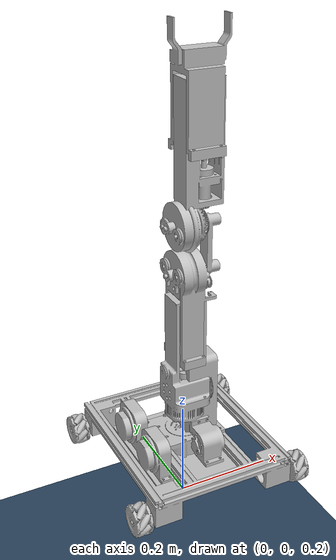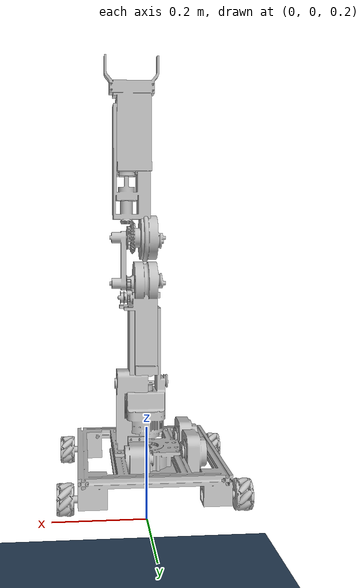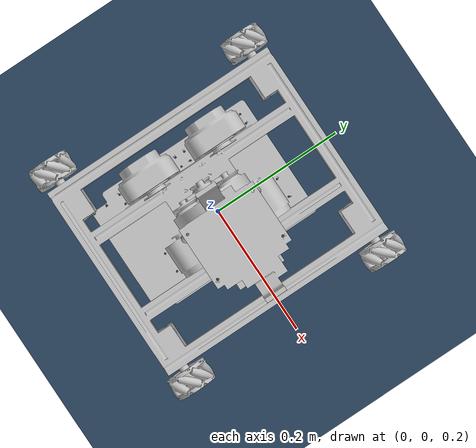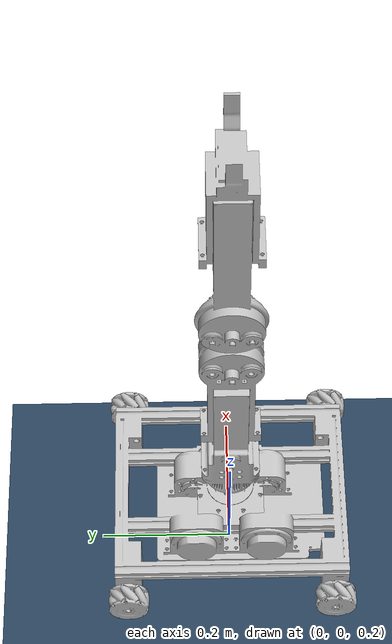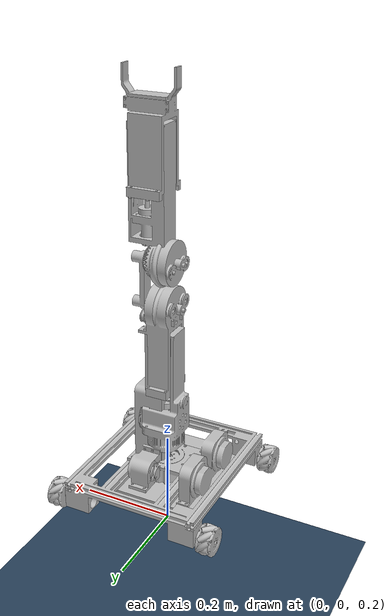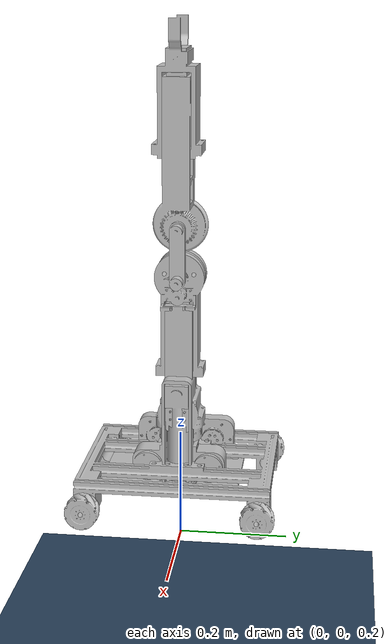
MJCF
<?xml version="1.0" ?>
<mujoco model="manipulator">

    <compiler angle="radian"
              meshdir="../../manipulator_motor_description/meshes"
              autolimits="true"/>

    <option gravity="0 0 -9.81" timestep="0.001"/>

    <default>
        <!-- armature: 감속기 반사 관성. frictionloss: 쿨롱 마찰. damping: 점성 감쇠 -->
        <joint frictionloss="0.1" armature="0.05" damping="1.0"/>
        <default class="revolute">
            <joint damping="2.0" armature="0.05"/>
        </default>
        <default class="prismatic">
            <joint damping="10.0" armature="0.01"/>
        </default>
        <default class="visual">
            <geom type="mesh" contype="0" conaffinity="0" group="2" rgba="0.75 0.75 0.75 1"/>
        </default>
        <default class="collision">
            <geom group="3" contype="1" conaffinity="1"/>
        </default>
    </default>

    <asset>
        <mesh name="base_link"     file="base_link.stl"     scale="0.001 0.001 0.001"/>
        <mesh name="yaw_link_1"    file="yaw_link_1.stl"    scale="0.001 0.001 0.001"/>
        <mesh name="lower_link1_1" file="lower_link1_1.stl" scale="0.001 0.001 0.001"/>
        <mesh name="lower_link2_1" file="lower_link2_1.stl" scale="0.001 0.001 0.001"/>
        <mesh name="guide2_1"      file="guide2_1.stl"      scale="0.001 0.001 0.001"/>
        <mesh name="upper_link1_1" file="upper_link1_1.stl" scale="0.001 0.001 0.001"/>
        <mesh name="upper_link2_1" file="upper_link2_1.stl" scale="0.001 0.001 0.001"/>
        <mesh name="wheel_fl_1"    file="wheel_fl_1.stl"    scale="0.001 0.001 0.001"/>
        <mesh name="wheel_bl_1"    file="wheel_bl_1.stl"    scale="0.001 0.001 0.001"/>
        <mesh name="wheel_fr_1"    file="wheel_fr_1.stl"    scale="0.001 0.001 0.001"/>
        <mesh name="wheel_br_1"    file="wheel_br_1.stl"    scale="0.001 0.001 0.001"/>

        <texture type="skybox" builtin="gradient"
                 rgb1="0.3 0.5 0.7" rgb2="0 0 0" width="512" height="3072"/>
        <texture type="2d" name="groundplane" builtin="checker" mark="edge"
                 rgb1="0.2 0.3 0.4" rgb2="0.1 0.2 0.3"
                 markrgb="0.8 0.8 0.8" width="300" height="300"/>
        <material name="groundplane" texture="groundplane"
                  texuniform="true" texrepeat="5 5" reflectance="0.2"/>
    </asset>

    <worldbody>
        <light pos="0 0 3" dir="0 0 -1" directional="true"/>
        <geom name="floor" size="0 0 0.05" type="plane"
              material="groundplane" friction="1.0 0.005 0.0001"/>

        <!-- ═══════════════════════════════════════════════════
             base_link: 세계에 고정 (freejoint 없음)
             ═══════════════════════════════════════════════════ -->
        <body name="base_link" pos="0 0 0.3" quat="1 0 0 0">
            <geom type="mesh" mesh="base_link" class="visual"/>
            <inertial pos="7.545697705159546e-06 -6.288383922219511e-06 0.03594594111046938"
                      mass="0.8918760892092862"
                      fullinertia="0.013044 0.008436 0.020962 0.0 0.0 -1e-06"/>

            <!-- ── joint0: yaw1 (revolute, axis 0 0 1) ── -->
            <!-- URDF joint origin: 0 0 0.0566 rel to base_link -->
            <body name="yaw_link_1" pos="0 0 0.0566">
                <joint name="yaw1" type="hinge" pos="0 0 0"
                       axis="0 0 1" range="-2.094395 2.094395" class="revolute"/>
                <geom type="mesh" mesh="yaw_link_1" class="visual" pos="0 0 -0.0566"/>
                <inertial pos="0.02505185068167164 0.00017308161549442616 0.04350757657338304"
                          mass="0.9994851144783486"
                          fullinertia="0.005871 0.004947 0.008392 -9e-06 -0.000648 -5e-06"/>

                <!-- ── joint1: pitch1 (revolute, axis 1 0 0, range 0~π/2) ── -->
                <!-- URDF joint origin: 0.054 0.0005 0.0965 rel to yaw_link_1 -->
                <body name="lower_link1_1" pos="0.054 0.0005 0.0965">
                    <joint name="pitch1" type="hinge" pos="0 0 0"
                           axis="1 0 0" range="0.0 1.570796" class="revolute" damping="5.0"/>
                    <geom type="mesh" mesh="lower_link1_1" class="visual" pos="-0.054 -0.0005 -0.1531"/>
                    <inertial pos="-0.045625724622633944 3.860031882735413e-05 0.05414663144303672"
                              mass="0.42602249031214784"
                              fullinertia="0.002224 0.002372 0.000454 0.0 -7e-06 -1e-06"/>

                    <!-- ── joint2: pris1 (prismatic, axis 0 0 1) ── -->
                    <!-- URDF joint origin: -0.0482 5.7e-05 0.04 rel to lower_link1_1 -->
                    <body name="lower_link2_1" pos="-0.0482 5.7e-05 0.04">
                        <joint name="pris1" type="slide" pos="0 0 0"
                               axis="0 0 1" range="0.0 0.09" class="prismatic"/>
                        <geom type="mesh" mesh="lower_link2_1" class="visual"
                              pos="-0.0058 -0.000557 -0.1931"/>
                        <inertial pos="-0.00012108099532818183 4.2996702874214024e-05 0.16604608820037914"
                                  mass="0.48373366369507653"
                                  fullinertia="0.002598 0.002446 0.000395 1e-06 -3e-06 -1e-06"/>

                        <!-- ── joint3: pitch2 (revolute, axis 1 0 0, range 0~π/2) ── -->
                        <!-- URDF joint origin: 0.0435 0.000297 0.205944 rel to lower_link2_1 -->
                        <body name="guide2_1" pos="0.0435 0.000297 0.205944">
                            <joint name="pitch2" type="hinge" pos="0 0 0"
                                   axis="1 0 0" range="0.0 1.570796" class="revolute"/>
                            <geom type="mesh" mesh="guide2_1" class="visual"
                                  pos="-0.0493 -0.000854 -0.399044"/>
                            <inertial pos="0.004660145389821631 -8.351629404252335e-05 0.051805846663189714"
                                      mass="0.04577799695273184"
                                      fullinertia="6.9e-05 7e-05 5e-06 0.0 0.0 0.0"/>

                            <body name="upper_link1_1" pos="-0.00255 0.00036 0.093499">
                                <joint name="pitch3" type="hinge" pos="0 0 0"
                                       axis="1 0 0" range="0.0 1.570796" class="revolute"/>
                                <geom type="mesh" mesh="upper_link1_1" class="visual"
                                      pos="-0.04675 -0.001214 -0.492543"/>
                                <inertial pos="-0.030636725348820667 -0.00013414945634581928 0.09528109292485926"
                                          mass="0.7296264074388947"
                                          fullinertia="0.00632 0.006514 0.000624 -1e-06 -0.000515 -1.4e-05"/>

                                <!-- ── joint4: pris2 (prismatic, axis 0 0 1) ── -->
                                <!-- URDF joint origin: -0.00255 0.000491 0.102116 rel to upper_link1_1 -->
                                <body name="upper_link2_1" pos="-0.00255 0.000491 0.102116">
                                    <joint name="pris2" type="slide" pos="0 0 0"
                                           axis="0 0 1" range="0.0 0.09" class="prismatic"/>
                                    <geom type="mesh" mesh="upper_link2_1" class="visual"
                                          pos="-0.0442 -0.001705 -0.594659"/>
                                    <inertial pos="-0.012947590284332407 5.5232631865337074e-05 0.13361930444452141"
                                              mass="0.35479896787269694"
                                              fullinertia="0.001653 0.001635 0.000368 0.0 2.8e-05 -1.1e-05"/>
                                </body>
                            </body>
                        </body>
                    </body>
                </body>
            </body>

            <!-- ── 4륜 passive (시각화 전용, 비액추에이티드) ── -->
            <!-- URDF fl joint origin: 0.1452 -0.1552 0.0091 rel to base_link -->
            <body name="wheel_fl_1" pos="0.1452 -0.1552 0.0091">
                <joint name="fl" type="hinge" axis="1 0 0"/>
                <geom type="mesh" mesh="wheel_fl_1" class="visual" pos="-0.1452 0.1552 -0.0091"/>
                <inertial pos="0.022733132020722774 5.291380714977922e-07 -7.023490456061279e-06"
                          mass="0.05353335397371693"
                          fullinertia="2.5e-05 1.8e-05 1.8e-05 0.0 0.0 0.0"/>
            </body>

            <!-- URDF bl joint origin: 0.1452 0.1552 0.0091 rel to base_link -->
            <body name="wheel_bl_1" pos="0.1452 0.1552 0.0091">
                <joint name="bl" type="hinge" axis="1 0 0"/>
                <geom type="mesh" mesh="wheel_bl_1" class="visual" pos="-0.1452 -0.1552 -0.0091"/>
                <inertial pos="0.02273313202167407 5.110640206307249e-07 -7.024835080346459e-06"
                          mass="0.05353335397547339"
                          fullinertia="2.5e-05 1.8e-05 1.8e-05 0.0 0.0 0.0"/>
            </body>

            <!-- URDF fr joint origin: -0.1452 -0.1552 0.0091 rel to base_link -->
            <body name="wheel_fr_1" pos="-0.1452 -0.1552 0.0091">
                <joint name="fr" type="hinge" axis="1 0 0"/>
                <geom type="mesh" mesh="wheel_fr_1" class="visual" pos="0.1452 0.1552 -0.0091"/>
                <inertial pos="-0.022733132410434842 2.849096295387543e-06 6.441422285792531e-06"
                          mass="0.05353335889121502"
                          fullinertia="2.5e-05 1.8e-05 1.8e-05 0.0 0.0 0.0"/>
            </body>

            <!-- URDF br joint origin: -0.1452 0.1552 0.0091 rel to base_link -->
            <body name="wheel_br_1" pos="-0.1452 0.1552 0.0091">
                <joint name="br" type="hinge" axis="1 0 0"/>
                <geom type="mesh" mesh="wheel_br_1" class="visual" pos="0.1452 -0.1552 -0.0091"/>
                <inertial pos="-0.022733131995852668 4.4508618859961935e-06 5.458912178934669e-06"
                          mass="0.05353335383710403"
                          fullinertia="2.5e-05 1.8e-05 1.8e-05 0.0 0.0 0.0"/>
            </body>
        </body>
    </worldbody>

    <!-- 와이어 커플링: pitch3 = pitch2 (같은 축 방향, 동일 회전) -->
    <equality>
        <joint joint1="pitch3" joint2="pitch2" polycoef="0 1 0 0 0"/>
    </equality>

    <!-- 5개 제어 액추에이터 (pitch3, fl/bl/fr/br는 passive) -->
    <actuator>
        <motor name="act_yaw1"   joint="yaw1"   forcerange="-100 100" gear="1"/>
        <motor name="act_pitch1" joint="pitch1" forcerange="-100 100" gear="1"/>
        <motor name="act_pris1"  joint="pris1"  forcerange="-500 500" gear="1"/>
        <motor name="act_pitch2" joint="pitch2" forcerange="-100 100" gear="1"/>
        <motor name="act_pris2"  joint="pris2"  forcerange="-500 500" gear="1"/>
    </actuator>

    <visual>
        <headlight diffuse="0.6 0.6 0.6" ambient="0.3 0.3 0.3" specular="0 0 0"/>
        <rgba haze="0.15 0.25 0.35 1"/>
        <global azimuth="120" elevation="-20"/>
    </visual>

    <statistic center="0 0.1 0.3" extent="1.2"/>
</mujoco>
